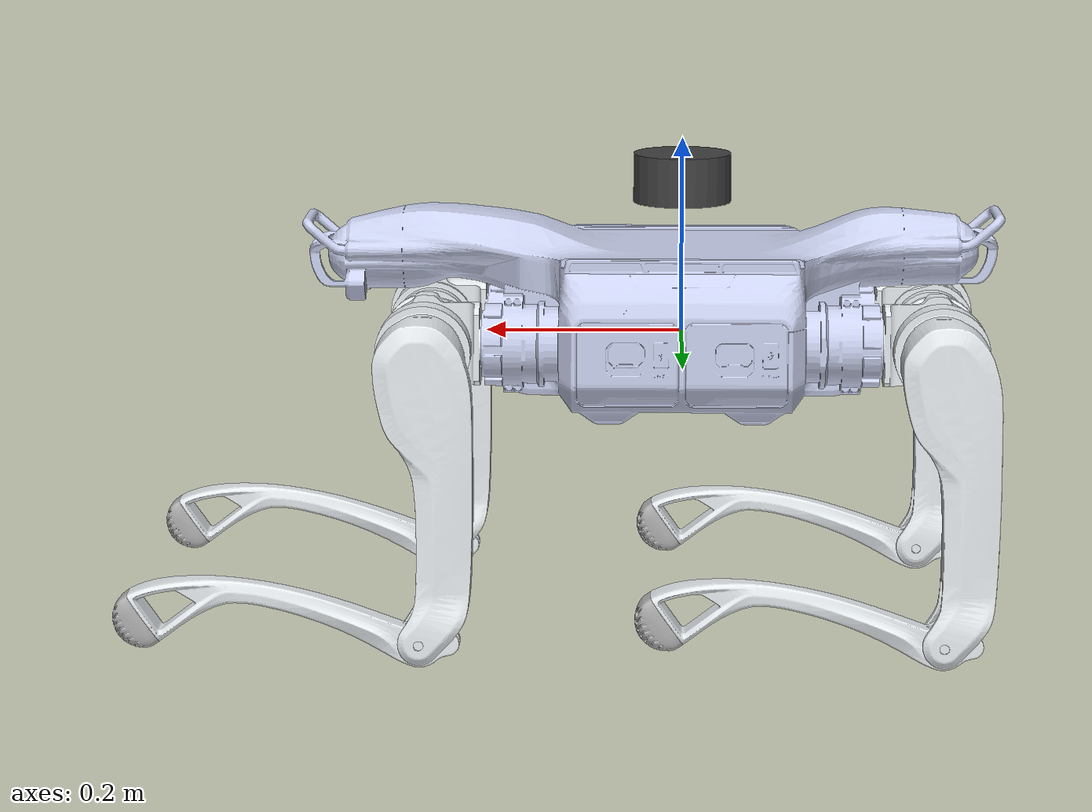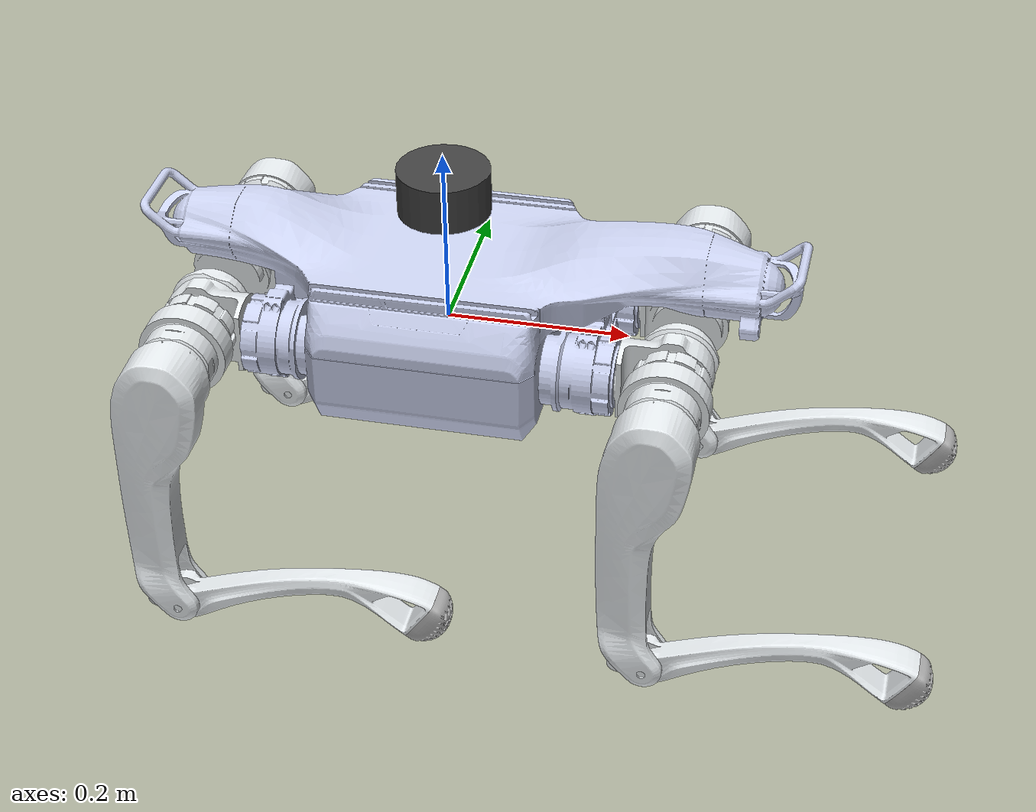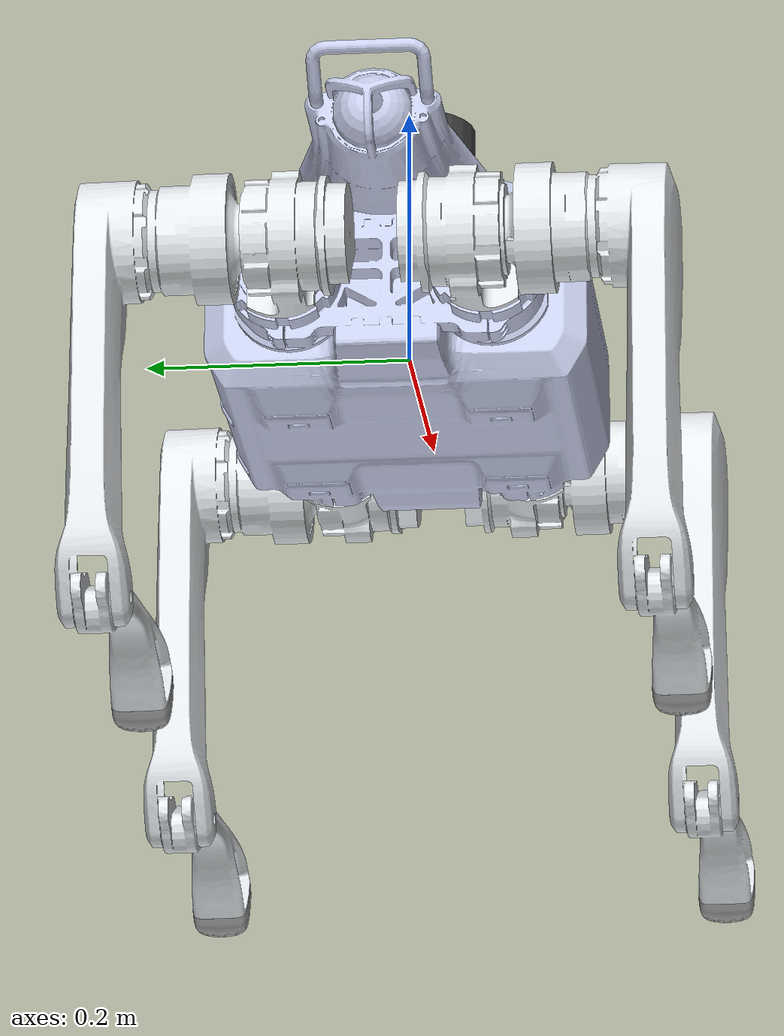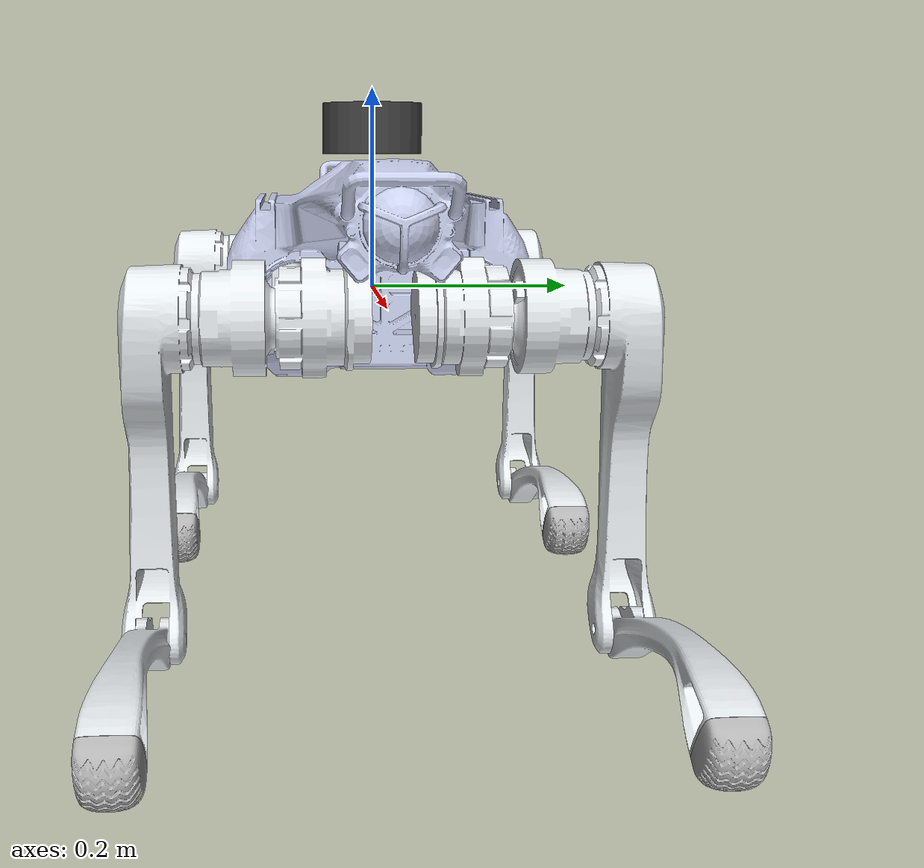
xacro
<?xml version="1.0"?>
<robot name="a2_lidar" xmlns:xacro="http://www.ros.org/wiki/xacro">

  <!-- Official Unitree A2 description (plain URDF, root link = base_link) -->
  <xacro:include filename="$(find a2_description)/urdf/a2.urdf"/>

  <link name="lidar_link">
    <visual>
      <origin xyz="0 0 0" rpy="0 0 0"/>
      <geometry>
        <cylinder radius="0.05" length="0.05"/>
      </geometry>
      <material name="lidar_dark">
        <color rgba="0.25 0.25 0.25 1.0"/>
      </material>
    </visual>
    <collision>
      <origin xyz="0 0 0" rpy="0 0 0"/>
      <geometry>
        <cylinder radius="0.05" length="0.05"/>
      </geometry>
    </collision>
    <inertial>
      <origin xyz="0 0 0" rpy="0 0 0"/>
      <mass value="0.1"/>
      <inertia ixx="8.333e-05" ixy="0.0" ixz="0.0"
               iyy="8.333e-05" iyz="0.0"
               izz="1.25e-04"/>
    </inertial>
  </link>

  <joint name="lidar_joint" type="fixed">
    <parent link="base_link"/>
    <child link="lidar_link"/>
    <origin xyz="0 0 0.16" rpy="0 0 0"/>
  </joint>

  <gazebo reference="lidar_link">
    <sensor type="ray" name="a2_lidar">
      <update_rate>10</update_rate>
      <visualize>false</visualize>
      <ray>
        <scan>
          <horizontal>
            <samples>180</samples>
            <resolution>1</resolution>
            <min_angle>-3.1415926</min_angle>
            <max_angle>3.1415926</max_angle>
          </horizontal>
        </scan>
        <range>
          <min>0.1</min>
          <max>12.0</max>
          <resolution>0.01</resolution>
        </range>
      </ray>
      <plugin name="a2_lidar_plugin" filename="libgazebo_ros_ray_sensor.so">
        <ros>
          <remapping>~/out:=scan</remapping>
        </ros>
        <output_type>sensor_msgs/LaserScan</output_type>
        <frame_name>lidar_link</frame_name>
      </plugin>
    </sensor>
  </gazebo>

  <!-- Static model: pose is driven externally (SetEntityState), no joint control needed -->
  <gazebo>
    <static>true</static>
  </gazebo>

</robot>

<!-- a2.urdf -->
<robot name="a2">

  <!-- [CAUTION] uncomment when convert to mujoco -->

  <link
    name="base_link">
    <inertial>
      <origin
        xyz="6.982591E-03 -0.712858E-03 12.889523E-03"
        rpy="0 0 0" />
      <mass
        value="19.651" />
      <inertia
        ixx="141775328.248061E-09"
        ixy="400505.020171E-09"
        ixz="-6996487.718114E-09"
        iyy="407724601.564754E-09"
        iyz="-361858.857563E-09"
        izz="472247985.516800E-09" />
    </inertial>
    <visual>
      <origin
        xyz="0 0 0"
        rpy="0 0 0" />
      <geometry>
        <mesh filename="package://a2_description/meshes/base_link.STL" />
      </geometry>
      <material
        name="">
        <color rgba="0.792156862745098 0.819607843137255 0.933333333333333 1" />
      </material>
    </visual>

    <collision>
      <origin xyz="0 0 0.007" rpy="0 0 0" />
      <geometry>
        <box size="0.24 0.28 0.17" />
      </geometry>
    </collision>

    <collision>
      <origin xyz="0.25 0 0.119" rpy="0.0 0 0.0" />
      <geometry>
        <box size="0.08 0.05 0.02" />
      </geometry>
    </collision>

    <collision>
      <origin xyz="-0.22 0 0.119" rpy="-0.0 -0.03 0.0" />
      <geometry>
        <box size="0.05 0.03 0.016" />
      </geometry>
    </collision>

    <collision>
      <origin xyz="0.365 0 0.1" rpy="0 -0.7 0" />
      <geometry>
        <box size="0.06 0.1 0.01" />
      </geometry>
    </collision>

    <collision>
      <origin xyz="-0.31 0 0.112" rpy="0 0.7 0" />
      <geometry>
        <box size="0.045 0.1 0.01" />
      </geometry>
    </collision>

  </link>

  <link
    name="FL_hip">
    <inertial>
      <origin
        xyz="-2.408E-03 -16.220E-03 0.239E-03"
        rpy="0 0 0" />
      <mass
        value="1.620" />
      <inertia
        ixx="1476.261E-06"
        ixy="53.160E-06"
        ixz="-7.425E-06"
        iyy="1633.309E-06"
        iyz="-21.032E-06"
        izz="1630.804E-06" />
    </inertial>
    <visual>
      <origin
        xyz="0 0 0"
        rpy="0 0 0" />
      <geometry>
        <mesh filename="package://a2_description/meshes/left_front_Link1.STL" />
      </geometry>
      <material
        name="">
        <color rgba="0.898039215686275 0.917647058823529 0.929411764705882 1" />
      </material>
    </visual>

  </link>
  <joint
    name="FL_hip_joint"
    type="revolute">
    <origin
      xyz="0.25944 0.075113 0"
      rpy="0 0 0" />
    <parent
      link="base_link" />
    <child
      link="FL_hip" />
    <axis
      xyz="1 0 0" />
    <limit
      lower="-1.01"
      upper="1.01"
      effort="120.0"
      velocity="22.0" />
  </joint>
  <link
    name="FL_thigh">
    <inertial>
      <origin
        xyz="-3.268E-03 -31.110E-03 -53.896E-03"
        rpy="0 0 0" />
      <mass
        value="3.079" />
      <inertia
        ixx="29271.794E-06"
        ixy="337.285E-06"
        ixz="-1251.409E-06"
        iyy="26828.777E-06"
        iyz="5283.783E-06"
        izz="5121.720E-06" />
    </inertial>
    <visual>
      <origin
        xyz="0 0 0"
        rpy="0 0 0" />
      <geometry>
        <mesh
          filename="package://a2_description/meshes/left_front_Link2.STL" />
      </geometry>
      <material
        name="">
        <color
          rgba="0.898039215686275 0.917647058823529 0.929411764705882 1" />
      </material>
    </visual>
    <collision>
      <origin xyz="0.0 -0.04 0" rpy="1.571 0 0" />
      <geometry>
        <cylinder radius="0.048" length="0.12" />
      </geometry>
    </collision>

    <collision>
      <origin xyz="-0.025 0.00 -0.09" rpy="0 0.01 0" />
      <geometry>
        <box size="0.055 0.036 0.17" />
      </geometry>
    </collision>

    <collision>
      <origin xyz="-0.022 0.00 -0.27" rpy="0 -0.75 0" />
      <geometry>
        <box size="0.017 0.05 0.05" />
      </geometry>
    </collision>

  </link>
  <joint
    name="FL_thigh_joint"
    type="revolute">
    <origin
      xyz="0 0.12779 0"
      rpy="0 0 0" />
    <parent
      link="FL_hip" />
    <child
      link="FL_thigh" />
    <axis
      xyz="0 1 0" />
    <limit
      lower="-2.34"
      upper="3.15"
      effort="120.0"
      velocity="22.0" />
  </joint>
  <link
    name="FL_calf">
    <inertial>
      <origin
        xyz="12.515E-03 -0.024E-03 -117.649E-03"
        rpy="0 0 0" />
      <mass
        value="0.361" />
      <inertia
        ixx="3869.035E-06"
        ixy="-0.093E-06"
        ixz="298.636E-06"
        iyy="3945.295E-06"
        iyz="0.826E-06"
        izz="150.991E-06" />
    </inertial>
    <visual>
      <origin
        xyz="0 0 0"
        rpy="0 0 0" />
      <geometry>
        <mesh
          filename="package://a2_description/meshes/left_front_Link3.STL" />
      </geometry>
      <material
        name="">
        <color
          rgba="0.898039215686275 0.917647058823529 0.929411764705882 1" />
      </material>
    </visual>

    <collision>
      <origin xyz="0.018 -0.00 -0.08" rpy="0 -0.24 0" />
      <geometry>
        <box size="0.024 0.03 0.1" />
      </geometry>
    </collision>
    <collision>
      <origin xyz="0.033 -0.00 -0.17" rpy="0 -0.03 0" />
      <geometry>
        <box size="0.022 0.03 0.08" />
      </geometry>
    </collision>
    <collision>
      <origin xyz="0.029 -0.00 -0.236" rpy="0 0.2 0" />
      <geometry>
        <box size="0.02 0.036 0.06" />
      </geometry>
    </collision>
    <collision>
      <origin xyz="0.008 -0.00 -0.23" rpy="0 0.68 0" />
      <geometry>
        <box size="0.01 0.036 0.06" />
      </geometry>
    </collision>

  </link>
  <joint
    name="FL_calf_joint"
    type="revolute">
    <origin
      xyz="0 0 -0.275"
      rpy="0 0 0" />
    <parent
      link="FL_thigh" />
    <child
      link="FL_calf" />
    <axis
      xyz="0 1 0" />
    <limit
      lower="-2.77"
      upper="-0.54"
      effort="180.0"
      velocity="14.6667" />
  </joint>
  <link
    name="FL_foot">
    <inertial>
      <origin
        xyz="-7.846E-03 0.012E-03 -9.403E-03"
        rpy="0 0 0" />
      <mass
        value="0.046" />
      <inertia
        ixx="13.994E-06"
        ixy="-0.003E-06"
        ixz="3.992E-06"
        iyy="14.434E-06"
        iyz="-0.004E-06"
        izz="15.404E-06" />
    </inertial>
    <visual>
      <origin
        xyz="0 0 0"
        rpy="0 0 0" />
      <geometry>
        <mesh
          filename="package://a2_description/meshes/left_front_Link4.STL" />
      </geometry>
      <material
        name="">
        <color
          rgba="0.698039215686274 0.698039215686274 0.698039215686274 1" />
      </material>
    </visual>

    <collision>
      <origin xyz="0.0 -0.00 -0.0" rpy="0 0 0" />
      <geometry>
        <sphere radius="0.032" />
      </geometry>
    </collision>

  </link>
  <joint
    name="FL_foot_joint"
    type="fixed" dont_collapse="true">
    <origin
      xyz="0 0 -0.275"
      rpy="0 0 0" />
    <parent
      link="FL_calf" />
    <child
      link="FL_foot" />
    <axis
      xyz="0 0 0" />
  </joint>

  <link
    name="RL_hip">
    <inertial>
      <origin
        xyz="3.270E-03 -16.220E-03 -0.097E-03"
        rpy="0 0 0" />
      <mass
        value="1.620" />
      <inertia
        ixx="1468.092E-06"
        ixy="-105.396E-06"
        ixz="-7.294E-06"
        iyy="1625.457E-06"
        iyz="-0.444E-06"
        izz="1631.122E-06" />
    </inertial>
    <visual>
      <origin
        xyz="0 0 0"
        rpy="0 0 0" />
      <geometry>
        <mesh
          filename="package://a2_description/meshes/left_hind_Link1.STL" />
      </geometry>
      <material
        name="">
        <color
          rgba="0.898039215686275 0.917647058823529 0.929411764705882 1" />
      </material>
    </visual>

  </link>
  <joint
    name="RL_hip_joint"
    type="revolute">
    <origin
      xyz="-0.25944 0.075113 0"
      rpy="0 0 0" />
    <parent
      link="base_link" />
    <child
      link="RL_hip" />
    <axis
      xyz="1 0 0" />
    <limit
      lower="-1.01"
      upper="1.01"
      effort="120.0"
      velocity="22.0" />
  </joint>
  <link
    name="RL_thigh">
    <inertial>
      <origin
        xyz="-3.268E-03 -31.110E-03 -53.896E-03"
        rpy="0 0 0" />
      <mass
        value="3.079" />
      <inertia
        ixx="29271.794E-06"
        ixy="337.285E-06"
        ixz="-1251.409E-06"
        iyy="26828.777E-06"
        iyz="5283.783E-06"
        izz="5121.720E-06" />
    </inertial>
    <visual>
      <origin
        xyz="0 0 0"
        rpy="0 0 0" />
      <geometry>
        <mesh
          filename="package://a2_description/meshes/left_hind_Link2.STL" />
      </geometry>
      <material
        name="">
        <color
          rgba="0.898039215686275 0.917647058823529 0.929411764705882 1" />
      </material>
    </visual>

    <collision>
      <origin xyz="0.0 -0.04 0" rpy="1.571 0 0" />
      <geometry>
        <cylinder radius="0.048" length="0.12" />
      </geometry>
    </collision>

    <collision>
      <origin xyz="-0.025 0.00 -0.09" rpy="0 0.01 0" />
      <geometry>
        <box size="0.055 0.036 0.17" />
      </geometry>
    </collision>

    <collision>
      <origin xyz="-0.022 0.00 -0.27" rpy="0 -0.75 0" />
      <geometry>
        <box size="0.017 0.05 0.05" />
      </geometry>
    </collision>

  </link>
  <joint
    name="RL_thigh_joint"
    type="revolute">
    <origin
      xyz="0 0.12779 0"
      rpy="0 0 0" />
    <parent
      link="RL_hip" />
    <child
      link="RL_thigh" />
    <axis
      xyz="0 1 0" />
    <limit
      lower="-1.56"
      upper="3.94"
      effort="120.0"
      velocity="22.0" />
  </joint>
  <link
    name="RL_calf">
    <inertial>
      <origin
        xyz="12.515E-03 -0.024E-03 -117.649E-03"
        rpy="0 0 0" />
      <mass
        value="0.361" />
      <inertia
        ixx="3869.035E-06"
        ixy="-0.093E-06"
        ixz="298.636E-06"
        iyy="3945.295E-06"
        iyz="0.826E-06"
        izz="150.991E-06" />
    </inertial>
    <visual>
      <origin
        xyz="0 0 0"
        rpy="0 0 0" />
      <geometry>
        <mesh
          filename="package://a2_description/meshes/left_hind_Link3.STL" />
      </geometry>
      <material
        name="">
        <color
          rgba="0.898039215686275 0.917647058823529 0.929411764705882 1" />
      </material>
    </visual>
    <collision>
      <origin xyz="0.018 -0.00 -0.08" rpy="0 -0.24 0" />
      <geometry>
        <box size="0.024 0.03 0.1" />
      </geometry>
    </collision>
    <collision>
      <origin xyz="0.033 -0.00 -0.17" rpy="0 -0.03 0" />
      <geometry>
        <box size="0.022 0.03 0.08" />
      </geometry>
    </collision>
    <collision>
      <origin xyz="0.029 -0.00 -0.236" rpy="0 0.2 0" />
      <geometry>
        <box size="0.02 0.036 0.06" />
      </geometry>
    </collision>
    <collision>
      <origin xyz="0.008 -0.00 -0.23" rpy="0 0.68 0" />
      <geometry>
        <box size="0.01 0.036 0.06" />
      </geometry>
    </collision>
  </link>
  <joint
    name="RL_calf_joint"
    type="revolute">
    <origin
      xyz="0 0 -0.275"
      rpy="0 0 0" />
    <parent
      link="RL_thigh" />
    <child
      link="RL_calf" />
    <axis
      xyz="0 1 0" />
    <limit
      lower="-2.77"
      upper="-0.54"
      effort="180.0"
      velocity="14.6667" />
  </joint>
  <link
    name="RL_foot">
    <inertial>
      <origin
        xyz="-7.846E-03 0.012E-03 -9.403E-03"
        rpy="0 0 0" />
      <mass
        value="0.046" />
      <inertia
        ixx="13.994E-06"
        ixy="-0.003E-06"
        ixz="3.992E-06"
        iyy="14.434E-06"
        iyz="-0.004E-06"
        izz="15.404E-06" />
    </inertial>
    <visual>
      <origin
        xyz="0 0 0"
        rpy="0 0 0" />
      <geometry>
        <mesh
          filename="package://a2_description/meshes/left_hind_Link4.STL" />
      </geometry>
      <material
        name="">
        <color
          rgba="0.698039215686274 0.698039215686274 0.698039215686274 1" />
      </material>
    </visual>
    <collision>
      <origin xyz="0.0 -0.00 -0.0" rpy="0 0 0" />
      <geometry>
        <sphere radius="0.032" />
      </geometry>
    </collision>
  </link>
  <joint
    name="RL_foot_joint"
    type="fixed" dont_collapse="true">
    <origin
      xyz="0 0 -0.275"
      rpy="0 0 0" />
    <parent
      link="RL_calf" />
    <child
      link="RL_foot" />
    <axis
      xyz="0 0 0" />
  </joint>

  <link
    name="FR_hip">
    <inertial>
      <origin
        xyz="-2.465E-03 16.220E-03 0.318E-03"
        rpy="0 0 0" />
      <mass
        value="1.620" />
      <inertia
        ixx="1483.677E-06"
        ixy="-56.616E-06"
        ixz="-5.890E-06"
        iyy="1632.784E-06"
        iyz="25.536E-06"
        izz="1622.864E-06" />
    </inertial>
    <visual>
      <origin
        xyz="0 0 0"
        rpy="0 0 0" />
      <geometry>
        <mesh
          filename="package://a2_description/meshes/right_front_Link1.STL" />
      </geometry>
      <material
        name="">
        <color
          rgba="0.898039215686275 0.917647058823529 0.929411764705882 1" />
      </material>
    </visual>

  </link>
  <joint
    name="FR_hip_joint"
    type="revolute">
    <origin
      xyz="0.25944 -0.075113 0"
      rpy="0 0 0" />
    <parent
      link="base_link" />
    <child
      link="FR_hip" />
    <axis
      xyz="1 0 0" />
    <limit
      lower="-1.01"
      upper="1.01"
      effort="120.0"
      velocity="22.0" />
  </joint>
  <link
    name="FR_thigh">
    <inertial>
      <origin
        xyz="-3.256E-03 31.125E-03 -53.921E-03"
        rpy="0 0 0" />
      <mass
        value="3.077" />
      <inertia
        ixx="29255.209E-06"
        ixy="-334.771E-06"
        ixz="-1255.239E-06"
        iyy="26819.094E-06"
        iyz="-5288.175E-06"
        izz="5125.147E-06" />
    </inertial>
    <visual>
      <origin
        xyz="0 0 0"
        rpy="0 0 0" />
      <geometry>
        <mesh
          filename="package://a2_description/meshes/right_front_Link2.STL" />
      </geometry>
      <material
        name="">
        <color
          rgba="0.898039215686275 0.917647058823529 0.929411764705882 1" />
      </material>
    </visual>

    <collision>
      <origin xyz="0.0 0.04 0" rpy="1.571 0 0" />
      <geometry>
        <cylinder radius="0.048" length="0.12" />
      </geometry>
    </collision>

    <collision>
      <origin xyz="-0.025 0.00 -0.09" rpy="0 0.01 0" />
      <geometry>
        <box size="0.055 0.036 0.17" />
      </geometry>
    </collision>

    <collision>
      <origin xyz="-0.022 0.00 -0.27" rpy="0 -0.75 0" />
      <geometry>
        <box size="0.017 0.05 0.05" />
      </geometry>
    </collision>

  </link>
  <joint
    name="FR_thigh_joint"
    type="revolute">
    <origin
      xyz="0 -0.12779 0"
      rpy="0 0 0" />
    <parent
      link="FR_hip" />
    <child
      link="FR_thigh" />
    <axis
      xyz="0 1 0" />
    <limit
      lower="-2.34"
      upper="3.15"
      effort="120.0"
      velocity="22.0" />
  </joint>
  <link
    name="FR_calf">
    <inertial>
      <origin
        xyz="12.515E-03 0.016E-03 -117.649E-03"
        rpy="0 0 0" />
      <mass
        value="0.361" />
      <inertia
        ixx="3869.035E-06"
        ixy="0.087E-06"
        ixz="298.636E-06"
        iyy="3945.295E-06"
        iyz="-1.285E-06"
        izz="150.991E-06" />
    </inertial>
    <visual>
      <origin
        xyz="0 0 0"
        rpy="0 0 0" />
      <geometry>
        <mesh
          filename="package://a2_description/meshes/right_front_Link3.STL" />
      </geometry>
      <material
        name="">
        <color
          rgba="0.898039215686275 0.917647058823529 0.929411764705882 1" />
      </material>
    </visual>
    <collision>
      <origin xyz="0.018 -0.00 -0.08" rpy="0 -0.24 0" />
      <geometry>
        <box size="0.024 0.03 0.1" />
      </geometry>
    </collision>
    <collision>
      <origin xyz="0.033 -0.00 -0.17" rpy="0 -0.03 0" />
      <geometry>
        <box size="0.022 0.03 0.08" />
      </geometry>
    </collision>
    <collision>
      <origin xyz="0.029 -0.00 -0.236" rpy="0 0.2 0" />
      <geometry>
        <box size="0.02 0.036 0.06" />
      </geometry>
    </collision>
    <collision>
      <origin xyz="0.008 -0.00 -0.23" rpy="0 0.68 0" />
      <geometry>
        <box size="0.01 0.036 0.06" />
      </geometry>
    </collision>
  </link>
  <joint
    name="FR_calf_joint"
    type="revolute">
    <origin
      xyz="0 0 -0.275"
      rpy="0 0 0" />
    <parent
      link="FR_thigh" />
    <child
      link="FR_calf" />
    <axis
      xyz="0 1 0" />
    <limit
      lower="-2.77"
      upper="-0.54"
      effort="180.0"
      velocity="14.6667" />
  </joint>
  <link
    name="FR_foot">
    <inertial>
      <origin
        xyz="-7.846E-03 0.012E-03 -9.403E-03"
        rpy="0 0 0" />
      <mass
        value="0.046" />
      <inertia
        ixx="13.994E-06"
        ixy="-0.003E-06"
        ixz="3.992E-06"
        iyy="14.434E-06"
        iyz="-0.004E-06"
        izz="15.404E-06" />
    </inertial>
    <visual>
      <origin
        xyz="0 0 0"
        rpy="0 0 0" />
      <geometry>
        <mesh
          filename="package://a2_description/meshes/right_front_Link4.STL" />
      </geometry>
      <material
        name="">
        <color
          rgba="0.698039215686274 0.698039215686274 0.698039215686274 1" />
      </material>
    </visual>
    <collision>
      <origin xyz="0.0 -0.00 -0.0" rpy="0 0 0" />
      <geometry>
        <sphere radius="0.032" />
      </geometry>
    </collision>
  </link>
  <joint
    name="FR_foot_joint"
    type="fixed" dont_collapse="true">
    <origin
      xyz="0 0 -0.275"
      rpy="0 0 0" />
    <parent
      link="FR_calf" />
    <child
      link="FR_foot" />
    <axis
      xyz="0 0 0" />
  </joint>

  <link
    name="RR_hip">
    <inertial>
      <origin
        xyz="3.270E-03 16.220E-03 -0.037E-03"
        rpy="0 0 0" />
      <mass
        value="1.620" />
      <inertia
        ixx="1464.949E-06"
        ixy="105.396E-06"
        ixz="-9.437E-06"
        iyy="1625.469E-06"
        iyz="4.282E-06"
        izz="1634.276E-06" />
    </inertial>
    <visual>
      <origin
        xyz="0 0 0"
        rpy="0 0 0" />
      <geometry>
        <mesh
          filename="package://a2_description/meshes/right_hind_Link1.STL" />
      </geometry>
      <material
        name="">
        <color
          rgba="0.898039215686275 0.917647058823529 0.929411764705882 1" />
      </material>
    </visual>

  </link>
  <joint
    name="RR_hip_joint"
    type="revolute">
    <origin
      xyz="-0.25944 -0.075113 0"
      rpy="0 0 0" />
    <parent
      link="base_link" />
    <child
      link="RR_hip" />
    <axis
      xyz="1 0 0" />
    <limit
      lower="-1.01"
      upper="1.01"
      effort="120.0"
      velocity="22.0" />
  </joint>
  <link
    name="RR_thigh">
    <inertial>
      <origin
        xyz="-3.256E-03 31.125E-03 -53.921E-03"
        rpy="0 0 0" />
      <mass
        value="3.077" />
      <inertia
        ixx="29255.209E-06"
        ixy="-334.771E-06"
        ixz="-1255.239E-06"
        iyy="26819.094E-06"
        iyz="-5288.175E-06"
        izz="5125.147E-06" />
    </inertial>
    <visual>
      <origin
        xyz="0 0 0"
        rpy="0 0 0" />
      <geometry>
        <mesh
          filename="package://a2_description/meshes/right_hind_Link2.STL" />
      </geometry>
      <material
        name="">
        <color
          rgba="0.898039215686275 0.917647058823529 0.929411764705882 1" />
      </material>
    </visual>
    <collision>
      <origin xyz="0.0 0.04 0" rpy="1.571 0 0" />
      <geometry>
        <cylinder radius="0.048" length="0.12" />
      </geometry>
    </collision>

    <collision>
      <origin xyz="-0.025 0.00 -0.09" rpy="0 0.01 0" />
      <geometry>
        <box size="0.055 0.036 0.17" />
      </geometry>
    </collision>

    <collision>
      <origin xyz="-0.022 0.00 -0.27" rpy="0 -0.75 0" />
      <geometry>
        <box size="0.017 0.05 0.05" />
      </geometry>
    </collision>
  </link>
  <joint
    name="RR_thigh_joint"
    type="revolute">
    <origin
      xyz="0 -0.12779 0"
      rpy="0 0 0" />
    <parent
      link="RR_hip" />
    <child
      link="RR_thigh" />
    <axis
      xyz="0 1 0" />
    <limit
      lower="-1.56"
      upper="3.94"
      effort="120.0"
      velocity="22.0" />
  </joint>
  <link
    name="RR_calf">
    <inertial>
      <origin
        xyz="12.515E-03 0.016E-03 -117.649E-03"
        rpy="0 0 0" />
      <mass
        value="0.361" />
      <inertia
        ixx="3869.035E-06"
        ixy="0.087E-06"
        ixz="298.636E-06"
        iyy="3945.295E-06"
        iyz="-1.285E-06"
        izz="150.991E-06" />
    </inertial>
    <visual>
      <origin
        xyz="0 0 0"
        rpy="0 0 0" />
      <geometry>
        <mesh
          filename="package://a2_description/meshes/right_hind_Link3.STL" />
      </geometry>
      <material
        name="">
        <color
          rgba="0.898039215686275 0.917647058823529 0.929411764705882 1" />
      </material>
    </visual>
    <collision>
      <origin xyz="0.018 -0.00 -0.08" rpy="0 -0.24 0" />
      <geometry>
        <box size="0.024 0.03 0.1" />
      </geometry>
    </collision>
    <collision>
      <origin xyz="0.033 -0.00 -0.17" rpy="0 -0.03 0" />
      <geometry>
        <box size="0.022 0.03 0.08" />
      </geometry>
    </collision>
    <collision>
      <origin xyz="0.029 -0.00 -0.236" rpy="0 0.2 0" />
      <geometry>
        <box size="0.02 0.036 0.06" />
      </geometry>
    </collision>
    <collision>
      <origin xyz="0.008 -0.00 -0.23" rpy="0 0.68 0" />
      <geometry>
        <box size="0.01 0.036 0.06" />
      </geometry>
    </collision>
  </link>
  <joint
    name="RR_calf_joint"
    type="revolute">
    <origin
      xyz="0 0 -0.275"
      rpy="0 0 0" />
    <parent
      link="RR_thigh" />
    <child
      link="RR_calf" />
    <axis
      xyz="0 1 0" />
    <limit
      lower="-2.77"
      upper="-0.54"
      effort="180.0"
      velocity="14.6667" />
  </joint>
  <link
    name="RR_foot">
    <inertial>
      <origin
        xyz="-7.846E-03 0.012E-03 -9.403E-03"
        rpy="0 0 0" />
      <mass
        value="0.046" />
      <inertia
        ixx="13.994E-06"
        ixy="-0.003E-06"
        ixz="3.992E-06"
        iyy="14.434E-06"
        iyz="-0.004E-06"
        izz="15.404E-06" />
    </inertial>
    <visual>
      <origin
        xyz="0 0 0"
        rpy="0 0 0" />
      <geometry>
        <mesh
          filename="package://a2_description/meshes/right_hind_Link4.STL" />
      </geometry>
      <material
        name="">
        <color
          rgba="0.698039215686274 0.698039215686274 0.698039215686274 1" />
      </material>
    </visual>
    <collision>
      <origin xyz="0.0 -0.00 -0.0" rpy="0 0 0" />
      <geometry>
        <sphere radius="0.032" />
      </geometry>
    </collision>
  </link>
  <joint
    name="RR_foot_joint"
    type="fixed" dont_collapse="true">
    <origin
      xyz="0 0 -0.275"
      rpy="0 0 0" />
    <parent
      link="RR_calf" />
    <child
      link="RR_foot" />
    <axis
      xyz="0 0 0" />
  </joint>

  <link name="camera_link"/>
  <joint name="camera_joint" type="fixed">
    <origin xyz="0.3381 0.0336 0.0525" rpy="0 0 0"/>
    <parent link="base_link"/>
    <child link="camera_link"/>
  </joint>

  <link name="front_lidar_link"/>

  <joint name="front_lidar_joint" type="fixed">
    <origin xyz="0.33767 0.0 0.08134" rpy="1.5708 0 1.5708"/>
    <parent link="base_link"/>
    <child link="front_lidar_link"/>
  </joint>

  <link name="rear_lidar_link"/>

  <joint name="rear_lidar_joint" type="fixed">
    <origin xyz="0.0 0.005997 -0.617643765" rpy="0 3.14159 0"/>
    <parent link="front_lidar_link"/>
    <child link="rear_lidar_link"/>
  </joint>

</robot>
